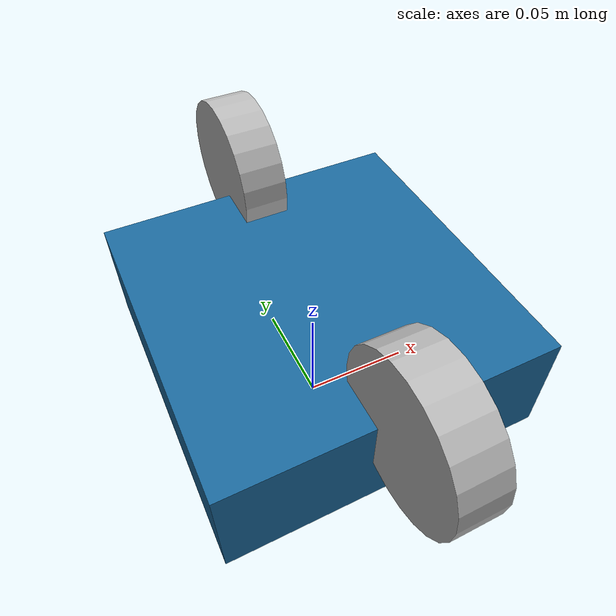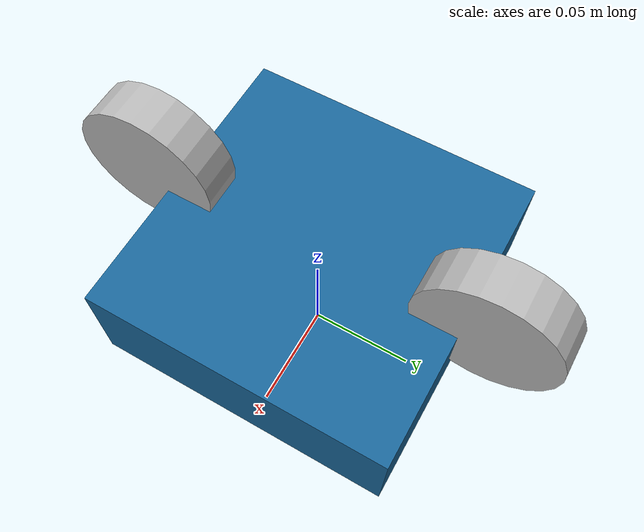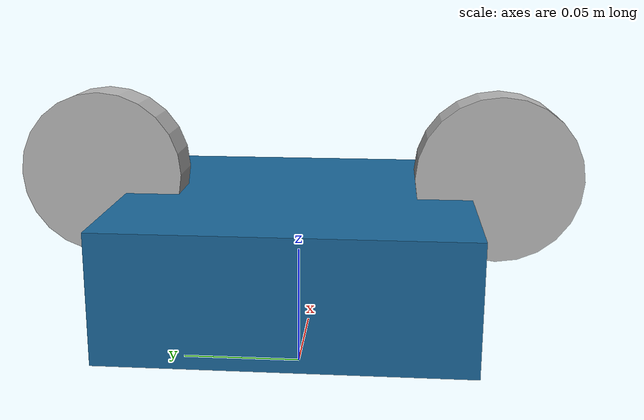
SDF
<sdf version="1.7">
  <model name="tb3">
    <pose>0 0 0.05 0 0 0</pose>
    <static>false</static>

    <link name="base_link">
      <inertial><mass>1.0</mass>
        <inertia><ixx>0.01</ixx><iyy>0.01</iyy><izz>0.02</izz><ixy>0</ixy><ixz>0</ixz><iyz>0</iyz></inertia>
      </inertial>
      <collision name="base_col">
        <geometry><box><size>0.14 0.14 0.05</size></box></geometry>
      </collision>
      <visual name="base_vis">
        <geometry><box><size>0.14 0.14 0.05</size></box></geometry>
        <material><ambient>0.1 0.4 0.6 1</ambient></material>
      </visual>
    </link>

    <link name="wheel_left">
      <pose>0 0.08 0.033 0 1.5708 0</pose>
      <collision name="col"><geometry><cylinder><radius>0.033</radius><length>0.02</length></cylinder></geometry></collision>
      <visual name="vis"><geometry><cylinder><radius>0.033</radius><length>0.02</length></cylinder></geometry></visual>
    </link>

    <link name="wheel_right">
      <pose>0 -0.08 0.033 0 1.5708 0</pose>
      <collision name="col"><geometry><cylinder><radius>0.033</radius><length>0.02</length></cylinder></geometry></collision>
      <visual name="vis"><geometry><cylinder><radius>0.033</radius><length>0.02</length></cylinder></geometry></visual>
    </link>

    <joint name="left_wheel_joint" type="revolute">
      <parent>base_link</parent><child>wheel_left</child>
      <axis><xyz>0 1 0</xyz><limit><lower>-1e16</lower><upper>1e16</upper></limit></axis>
    </joint>

    <joint name="right_wheel_joint" type="revolute">
      <parent>base_link</parent><child>wheel_right</child>
      <axis><xyz>0 1 0</xyz><limit><lower>-1e16</lower><upper>1e16</upper></limit></axis>
    </joint>

    <plugin name="diff_drive" filename="gz-sim-diff-drive-system">
      <left_joint>left_wheel_joint</left_joint>
      <right_joint>right_wheel_joint</right_joint>
      <wheel_separation>0.16</wheel_separation>
      <wheel_radius>0.033</wheel_radius>
      <odom_publish_frequency>50</odom_publish_frequency>
      <topic>cmd_vel</topic>            <!-- GZ: /model/tb3/cmd_vel -->
      <odom_topic>odometry</odom_topic> <!-- GZ: /model/tb3/odometry -->
      <odom_frame>odom</odom_frame>
      <robot_base_frame>base_link</robot_base_frame>
      <max_linear_speed>0.5</max_linear_speed>
      <max_angular_speed>2.0</max_angular_speed>
    </plugin>
  </model>
</sdf>
